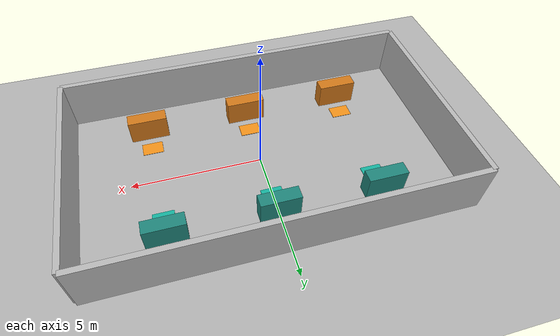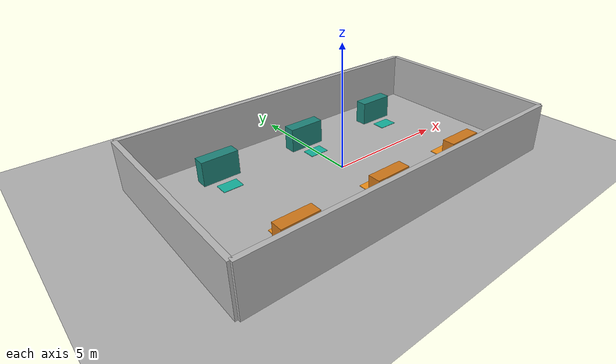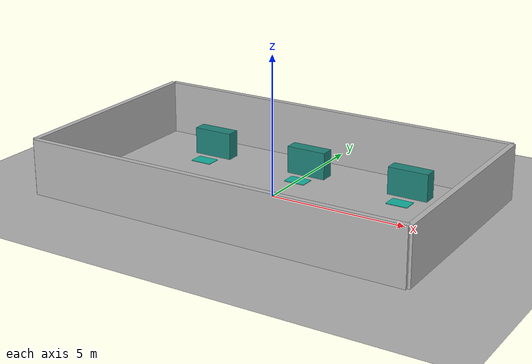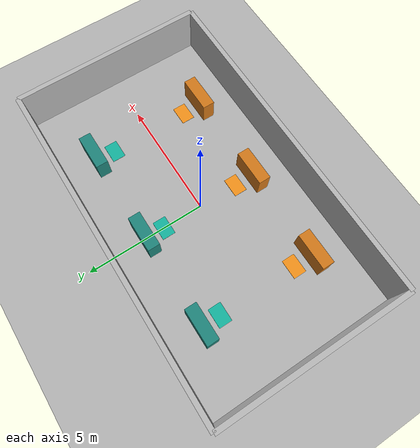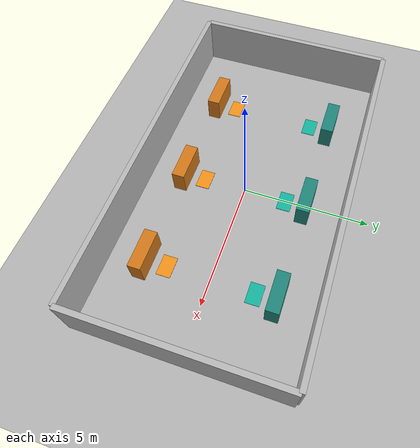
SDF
<?xml version="1.0" ?>
<sdf version="1.6">
  <world name="wide_aisle_world">
    <plugin filename="gz-sim-physics-system" name="gz::sim::systems::Physics"/>
    <plugin filename="gz-sim-user-commands-system" name="gz::sim::systems::UserCommands"/>
    <plugin filename="gz-sim-scene-broadcaster-system" name="gz::sim::systems::SceneBroadcaster"/>
    <plugin filename="gz-sim-sensors-system" name="gz::sim::systems::Sensors">
      <render_engine>ogre2</render_engine>
    </plugin>
    <plugin filename="gz-sim-imu-system" name="gz::sim::systems::Imu"/>
    <light type="directional" name="sun">
  <cast_shadows>true</cast_shadows>
  <pose>0 0 10 0 0 0</pose>
  <diffuse>0.8 0.8 0.8 1</diffuse>
  <specular>0.2 0.2 0.2 1</specular>
  <attenuation>
    <range>1000</range>
    <constant>0.9</constant>
    <linear>0.01</linear>
    <quadratic>0.001</quadratic>
  </attenuation>
  <direction>-0.5 0.1 -0.9</direction>
</light>

<model name="ground_plane">
  <static>true</static>
  <link name="link">
    <collision name="collision">
      <geometry>
        <plane>
          <normal>0 0 1</normal>
          <size>20 20</size>
        </plane>
      </geometry>
    </collision>
    <visual name="visual">
      <geometry>
        <plane>
          <normal>0 0 1</normal>
          <size>20 20</size>
        </plane>
      </geometry>
      <material>
        <ambient>0.7 0.7 0.7 1</ambient>
        <diffuse>0.7 0.7 0.7 1</diffuse>
      </material>
    </visual>
  </link>
</model>

    <!-- Boundary walls -->
    <model name="north_wall">
      <static>true</static>
      <pose>0 4 1 0 0 0</pose>
      <link name="link">
        <collision name="collision">
          <geometry><box><size>14 0.2 2</size></box></geometry>
        </collision>
        <visual name="visual">
          <geometry><box><size>14 0.2 2</size></box></geometry>
        </visual>
      </link>
    </model>

    <model name="south_wall">
      <static>true</static>
      <pose>0 -4 1 0 0 0</pose>
      <link name="link">
        <collision name="collision">
          <geometry><box><size>14 0.2 2</size></box></geometry>
        </collision>
        <visual name="visual">
          <geometry><box><size>14 0.2 2</size></box></geometry>
        </visual>
      </link>
    </model>

    <model name="west_wall">
      <static>true</static>
      <pose>-7 0 1 0 0 0</pose>
      <link name="link">
        <collision name="collision">
          <geometry><box><size>0.2 8 2</size></box></geometry>
        </collision>
        <visual name="visual">
          <geometry><box><size>0.2 8 2</size></box></geometry>
        </visual>
      </link>
    </model>

    <model name="east_wall">
      <static>true</static>
      <pose>7 0 1 0 0 0</pose>
      <link name="link">
        <collision name="collision">
          <geometry><box><size>0.2 8 2</size></box></geometry>
        </collision>
        <visual name="visual">
          <geometry><box><size>0.2 8 2</size></box></geometry>
        </visual>
      </link>
    </model>

    <!-- Shelf stations -->
    <model name="shelf_A1">
      <static>true</static>
      <pose>-4 2.5 0.5 0 0 0</pose>
      <link name="link">
        <collision name="collision">
          <geometry><box><size>1.5 0.5 1</size></box></geometry>
        </collision>
        <visual name="visual">
          <geometry><box><size>1.5 0.5 1</size></box></geometry>
          <material><ambient>0.10 0.38 0.36 1</ambient><diffuse>0.12 0.52 0.48 1</diffuse></material>
        </visual>
      </link>
    </model>

    <model name="shelf_A2">
      <static>true</static>
      <pose>0 2.5 0.5 0 0 0</pose>
      <link name="link">
        <collision name="collision">
          <geometry><box><size>1.5 0.5 1</size></box></geometry>
        </collision>
        <visual name="visual">
          <geometry><box><size>1.5 0.5 1</size></box></geometry>
          <material><ambient>0.10 0.38 0.36 1</ambient><diffuse>0.12 0.52 0.48 1</diffuse></material>
        </visual>
      </link>
    </model>

    <model name="shelf_A3">
      <static>true</static>
      <pose>4 2.5 0.5 0 0 0</pose>
      <link name="link">
        <collision name="collision">
          <geometry><box><size>1.5 0.5 1</size></box></geometry>
        </collision>
        <visual name="visual">
          <geometry><box><size>1.5 0.5 1</size></box></geometry>
          <material><ambient>0.10 0.38 0.36 1</ambient><diffuse>0.12 0.52 0.48 1</diffuse></material>
        </visual>
      </link>
    </model>

    <model name="shelf_B1">
      <static>true</static>
      <pose>-4 -2.5 0.5 0 0 0</pose>
      <link name="link">
        <collision name="collision">
          <geometry><box><size>1.5 0.5 1</size></box></geometry>
        </collision>
        <visual name="visual">
          <geometry><box><size>1.5 0.5 1</size></box></geometry>
          <material><ambient>0.56 0.31 0.08 1</ambient><diffuse>0.82 0.47 0.10 1</diffuse></material>
        </visual>
      </link>
    </model>

    <model name="shelf_B2">
      <static>true</static>
      <pose>0 -2.5 0.5 0 0 0</pose>
      <link name="link">
        <collision name="collision">
          <geometry><box><size>1.5 0.5 1</size></box></geometry>
        </collision>
        <visual name="visual">
          <geometry><box><size>1.5 0.5 1</size></box></geometry>
          <material><ambient>0.56 0.31 0.08 1</ambient><diffuse>0.82 0.47 0.10 1</diffuse></material>
        </visual>
      </link>
    </model>

    <model name="shelf_B3">
      <static>true</static>
      <pose>4 -2.5 0.5 0 0 0</pose>
      <link name="link">
        <collision name="collision">
          <geometry><box><size>1.5 0.5 1</size></box></geometry>
        </collision>
        <visual name="visual">
          <geometry><box><size>1.5 0.5 1</size></box></geometry>
          <material><ambient>0.56 0.31 0.08 1</ambient><diffuse>0.82 0.47 0.10 1</diffuse></material>
        </visual>
      </link>
    </model>

    <!-- Station pads match the navigation goal coordinates. -->
    <model name="pad_A1"><static>true</static><pose>-4 1.7 0.01 0 0 0</pose><link name="link"><visual name="visual"><geometry><box><size>0.8 0.55 0.02</size></box></geometry><material><ambient>0.08 0.56 0.50 1</ambient><diffuse>0.08 0.70 0.62 1</diffuse></material></visual></link></model>
    <model name="pad_A2"><static>true</static><pose>0 1.7 0.01 0 0 0</pose><link name="link"><visual name="visual"><geometry><box><size>0.8 0.55 0.02</size></box></geometry><material><ambient>0.08 0.56 0.50 1</ambient><diffuse>0.08 0.70 0.62 1</diffuse></material></visual></link></model>
    <model name="pad_A3"><static>true</static><pose>4 1.7 0.01 0 0 0</pose><link name="link"><visual name="visual"><geometry><box><size>0.8 0.55 0.02</size></box></geometry><material><ambient>0.08 0.56 0.50 1</ambient><diffuse>0.08 0.70 0.62 1</diffuse></material></visual></link></model>
    <model name="pad_B1"><static>true</static><pose>-4 -1.7 0.01 0 0 0</pose><link name="link"><visual name="visual"><geometry><box><size>0.8 0.55 0.02</size></box></geometry><material><ambient>0.78 0.39 0.05 1</ambient><diffuse>0.95 0.57 0.10 1</diffuse></material></visual></link></model>
    <model name="pad_B2"><static>true</static><pose>0 -1.7 0.01 0 0 0</pose><link name="link"><visual name="visual"><geometry><box><size>0.8 0.55 0.02</size></box></geometry><material><ambient>0.78 0.39 0.05 1</ambient><diffuse>0.95 0.57 0.10 1</diffuse></material></visual></link></model>
    <model name="pad_B3"><static>true</static><pose>4 -1.7 0.01 0 0 0</pose><link name="link"><visual name="visual"><geometry><box><size>0.8 0.55 0.02</size></box></geometry><material><ambient>0.78 0.39 0.05 1</ambient><diffuse>0.95 0.57 0.10 1</diffuse></material></visual></link></model>
  </world>
</sdf>
